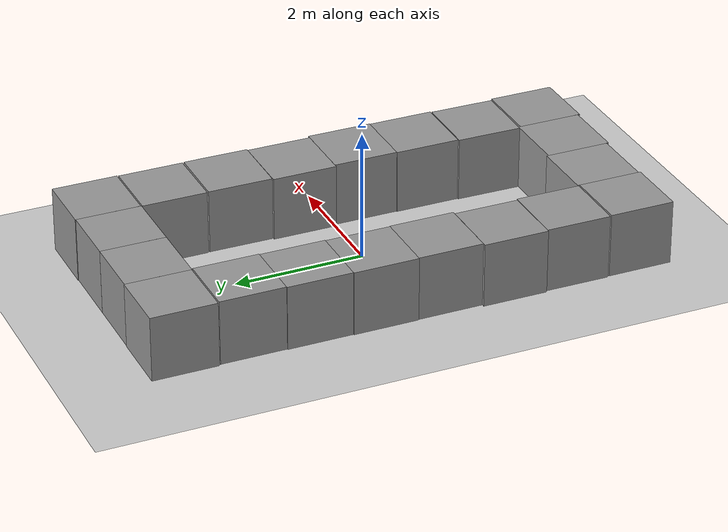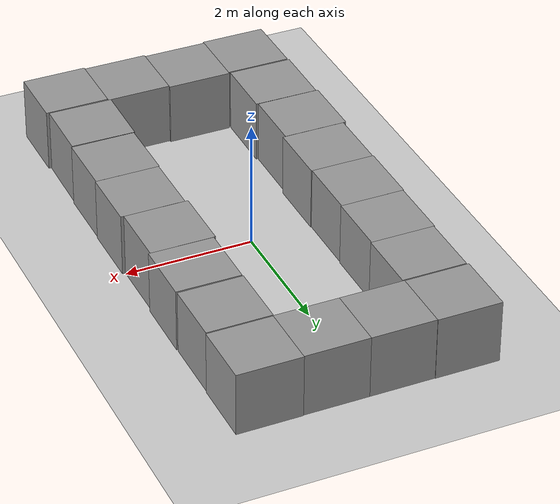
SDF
<sdf version="1.4">
 <world name="default">
  <light name="sun" type="directional">
   <pose>0 0 10 0 -0 0</pose>
   <diffuse>0.8 0.8 0.8 1</diffuse>
   <specular>0.2 0.2 0.2 1</specular>
   <attenuation>
    <range>1000</range>
    <constant>0.9</constant>
    <linear>0.01</linear>
    <quadratic>0.001</quadratic>
   </attenuation>
   <direction>-0.5 0.1 -0.9</direction>
  </light>
  <model name="ground_plane">
   <static>1</static>
   <link name="link">
    <collision name="collision">
     <geometry><plane><normal>0 0 1</normal><size>100 100</size></plane></geometry>
     <surface><friction><ode><mu>100</mu><mu2>50</mu2></ode></friction></surface>
    </collision>
    <visual name="visual">
     <cast_shadows>0</cast_shadows>
     <geometry><plane><normal>0 0 1</normal><size>100 100</size></plane></geometry>
     <material>
      <script><uri>file://media/materials/scripts/gazebo.material</uri><name>Gazebo/Grey</name></script>
     </material>
    </visual>
    <velocity_decay><linear>0</linear><angular>0</angular></velocity_decay>
   </link>
  </model>
  <physics type="ode">
   <max_step_size>0.001</max_step_size>
   <real_time_factor>1</real_time_factor>
   <real_time_update_rate>1000</real_time_update_rate>
   <gravity>0 0 -9.8</gravity>
  </physics>
  <scene><ambient>0.4 0.4 0.4 1</ambient><background>0.7 0.7 0.7 1</background><shadows>1</shadows></scene>
  <spherical_coordinates>
   <surface_model>EARTH_WGS84</surface_model>
   <latitude_deg>0</latitude_deg>
   <longitude_deg>0</longitude_deg>
   <elevation>0</elevation>
   <heading_deg>0</heading_deg>
  </spherical_coordinates>
  <model name="unit_box_1">
   <pose>-1.45911 -0.497832 0.5 0 -0 -0.000684</pose>
   <link name="link">
    <inertial>
     <mass>1</mass>
     <inertia><ixx>1</ixx><ixy>0</ixy><ixz>0</ixz><iyy>1</iyy><iyz>0</iyz><izz>1</izz></inertia>
    </inertial>
    <collision name="collision"><geometry><box><size>1 1 1</size></box></geometry></collision>
    <visual name="visual">
     <geometry><box><size>1 1 1</size></box></geometry>
     <material>
      <script><uri>file://media/materials/scripts/gazebo.material</uri><name>Gazebo/Grey</name></script>
     </material>
    </visual>
    <velocity_decay><linear>0</linear><angular>0</angular></velocity_decay>
   </link>
   <static>0</static>
  </model>
  <model name="unit_box_2">
   <pose>-1.47029 0.502232 0.5 -0 -0 -0.000612</pose>
   <link name="link">
    <inertial>
     <mass>1</mass>
     <inertia><ixx>1</ixx><ixy>0</ixy><ixz>0</ixz><iyy>1</iyy><iyz>0</iyz><izz>1</izz></inertia>
    </inertial>
    <collision name="collision"><geometry><box><size>1 1 1</size></box></geometry></collision>
    <visual name="visual">
     <geometry><box><size>1 1 1</size></box></geometry>
     <material>
      <script><uri>file://media/materials/scripts/gazebo.material</uri><name>Gazebo/Grey</name></script>
     </material>
    </visual>
    <velocity_decay><linear>0</linear><angular>0</angular></velocity_decay>
   </link>
   <static>0</static>
  </model>
  <model name="unit_box_3">
   <pose>-1.45782 1.50225 0.5 0 0 -0.000623</pose>
   <link name="link">
    <inertial>
     <mass>1</mass>
     <inertia><ixx>1</ixx><ixy>0</ixy><ixz>0</ixz><iyy>1</iyy><iyz>0</iyz><izz>1</izz></inertia>
    </inertial>
    <collision name="collision"><geometry><box><size>1 1 1</size></box></geometry></collision>
    <visual name="visual">
     <geometry><box><size>1 1 1</size></box></geometry>
     <material>
      <script><uri>file://media/materials/scripts/gazebo.material</uri><name>Gazebo/Grey</name></script>
     </material>
    </visual>
    <velocity_decay><linear>0</linear><angular>0</angular></velocity_decay>
   </link>
   <static>0</static>
  </model>
  <model name="unit_box_4">
   <pose>-1.44308 2.50225 0.5 0 -0 -0.000612</pose>
   <link name="link">
    <inertial>
     <mass>1</mass>
     <inertia><ixx>1</ixx><ixy>0</ixy><ixz>0</ixz><iyy>1</iyy><iyz>0</iyz><izz>1</izz></inertia>
    </inertial>
    <collision name="collision"><geometry><box><size>1 1 1</size></box></geometry></collision>
    <visual name="visual">
     <geometry><box><size>1 1 1</size></box></geometry>
     <material>
      <script><uri>file://media/materials/scripts/gazebo.material</uri><name>Gazebo/Grey</name></script>
     </material>
    </visual>
    <velocity_decay><linear>0</linear><angular>0</angular></velocity_decay>
   </link>
   <static>0</static>
  </model>
  <model name="unit_box_7">
   <pose>1.5402 -0.524001 0.5 0 -0 -0.000858</pose>
   <link name="link">
    <inertial>
     <mass>1</mass>
     <inertia><ixx>1</ixx><ixy>0</ixy><ixz>0</ixz><iyy>1</iyy><iyz>0</iyz><izz>1</izz></inertia>
    </inertial>
    <collision name="collision"><geometry><box><size>1 1 1</size></box></geometry></collision>
    <visual name="visual">
     <geometry><box><size>1 1 1</size></box></geometry>
     <material>
      <script><uri>file://media/materials/scripts/gazebo.material</uri><name>Gazebo/Grey</name></script>
     </material>
    </visual>
    <velocity_decay><linear>0</linear><angular>0</angular></velocity_decay>
   </link>
   <static>0</static>
  </model>
  <model name="unit_box_8">
   <pose>1.49506 0.476822 0.5 0 0 -0.000869</pose>
   <link name="link">
    <inertial>
     <mass>1</mass>
     <inertia><ixx>1</ixx><ixy>0</ixy><ixz>0</ixz><iyy>1</iyy><iyz>0</iyz><izz>1</izz></inertia>
    </inertial>
    <collision name="collision"><geometry><box><size>1 1 1</size></box></geometry></collision>
    <visual name="visual">
     <geometry><box><size>1 1 1</size></box></geometry>
     <material>
      <script><uri>file://media/materials/scripts/gazebo.material</uri><name>Gazebo/Grey</name></script>
     </material>
    </visual>
    <velocity_decay><linear>0</linear><angular>0</angular></velocity_decay>
   </link>
   <static>0</static>
  </model>
  <model name="unit_box_9">
   <pose>-1.48056 -2.50381 0.5 -0 -0 -0.007354</pose>
   <link name="link">
    <inertial>
     <mass>1</mass>
     <inertia><ixx>1</ixx><ixy>0</ixy><ixz>0</ixz><iyy>1</iyy><iyz>0</iyz><izz>1</izz></inertia>
    </inertial>
    <collision name="collision"><geometry><box><size>1 1 1</size></box></geometry></collision>
    <visual name="visual">
     <geometry><box><size>1 1 1</size></box></geometry>
     <material>
      <script><uri>file://media/materials/scripts/gazebo.material</uri><name>Gazebo/Grey</name></script>
     </material>
    </visual>
    <velocity_decay><linear>0</linear><angular>0</angular></velocity_decay>
   </link>
   <static>0</static>
  </model>
  <model name="unit_box_10">
   <pose>1.52665 -1.5242 0.5 -0 -0 -0.00124</pose>
   <link name="link">
    <inertial>
     <mass>1</mass>
     <inertia><ixx>1</ixx><ixy>0</ixy><ixz>0</ixz><iyy>1</iyy><iyz>0</iyz><izz>1</izz></inertia>
    </inertial>
    <collision name="collision"><geometry><box><size>1 1 1</size></box></geometry></collision>
    <visual name="visual">
     <geometry><box><size>1 1 1</size></box></geometry>
     <material>
      <script><uri>file://media/materials/scripts/gazebo.material</uri><name>Gazebo/Grey</name></script>
     </material>
    </visual>
    <velocity_decay><linear>0</linear><angular>0</angular></velocity_decay>
   </link>
   <static>0</static>
  </model>
  <model name="unit_box_11">
   <pose>1.50079 -2.53931 0.5 0 0 -0.013563</pose>
   <link name="link">
    <inertial>
     <mass>1</mass>
     <inertia><ixx>1</ixx><ixy>0</ixy><ixz>0</ixz><iyy>1</iyy><iyz>0</iyz><izz>1</izz></inertia>
    </inertial>
    <collision name="collision"><geometry><box><size>1 1 1</size></box></geometry></collision>
    <visual name="visual">
     <geometry><box><size>1 1 1</size></box></geometry>
     <material>
      <script><uri>file://media/materials/scripts/gazebo.material</uri><name>Gazebo/Grey</name></script>
     </material>
    </visual>
    <velocity_decay><linear>0</linear><angular>0</angular></velocity_decay>
   </link>
   <static>0</static>
  </model>
  <model name="unit_box_13">
   <pose>1.53251 -3.56532 0.5 0 -0 -0.001281</pose>
   <link name="link">
    <inertial>
     <mass>1</mass>
     <inertia><ixx>1</ixx><ixy>0</ixy><ixz>0</ixz><iyy>1</iyy><iyz>0</iyz><izz>1</izz></inertia>
    </inertial>
    <collision name="collision"><geometry><box><size>1 1 1</size></box></geometry></collision>
    <visual name="visual">
     <geometry><box><size>1 1 1</size></box></geometry>
     <material>
      <script><uri>file://media/materials/scripts/gazebo.material</uri><name>Gazebo/Grey</name></script>
     </material>
    </visual>
    <velocity_decay><linear>0</linear><angular>0</angular></velocity_decay>
   </link>
   <static>0</static>
  </model>
  <model name="unit_box_14">
   <pose>0.532552 -3.53237 0.5 0 -0 -0.001288</pose>
   <link name="link">
    <inertial>
     <mass>1</mass>
     <inertia><ixx>1</ixx><ixy>0</ixy><ixz>0</ixz><iyy>1</iyy><iyz>0</iyz><izz>1</izz></inertia>
    </inertial>
    <collision name="collision"><geometry><box><size>1 1 1</size></box></geometry></collision>
    <visual name="visual">
     <geometry><box><size>1 1 1</size></box></geometry>
     <material>
      <script><uri>file://media/materials/scripts/gazebo.material</uri><name>Gazebo/Grey</name></script>
     </material>
    </visual>
    <velocity_decay><linear>0</linear><angular>0</angular></velocity_decay>
   </link>
   <static>0</static>
  </model>
  <model name="unit_box_15">
   <pose>-0.46743 -3.49946 0.5 0 0 -0.001279</pose>
   <link name="link">
    <inertial>
     <mass>1</mass>
     <inertia><ixx>1</ixx><ixy>0</ixy><ixz>0</ixz><iyy>1</iyy><iyz>0</iyz><izz>1</izz></inertia>
    </inertial>
    <collision name="collision"><geometry><box><size>1 1 1</size></box></geometry></collision>
    <visual name="visual">
     <geometry><box><size>1 1 1</size></box></geometry>
     <material>
      <script><uri>file://media/materials/scripts/gazebo.material</uri><name>Gazebo/Grey</name></script>
     </material>
    </visual>
    <velocity_decay><linear>0</linear><angular>0</angular></velocity_decay>
   </link>
   <static>0</static>
  </model>
  <model name="unit_box_16">
   <pose>-1.46748 -3.5281 0.5 0 0 -0.001277</pose>
   <link name="link">
    <inertial>
     <mass>1</mass>
     <inertia><ixx>1</ixx><ixy>0</ixy><ixz>0</ixz><iyy>1</iyy><iyz>0</iyz><izz>1</izz></inertia>
    </inertial>
    <collision name="collision"><geometry><box><size>1 1 1</size></box></geometry></collision>
    <visual name="visual">
     <geometry><box><size>1 1 1</size></box></geometry>
     <material>
      <script><uri>file://media/materials/scripts/gazebo.material</uri><name>Gazebo/Grey</name></script>
     </material>
    </visual>
    <velocity_decay><linear>0</linear><angular>0</angular></velocity_decay>
   </link>
   <static>0</static>
  </model>
  <model name="unit_box_19">
   <pose>-1.4681 3.52257 0.5 0 -0 1.1e-05</pose>
   <link name="link">
    <inertial>
     <mass>1</mass>
     <inertia><ixx>1</ixx><ixy>0</ixy><ixz>0</ixz><iyy>1</iyy><iyz>0</iyz><izz>1</izz></inertia>
    </inertial>
    <collision name="collision"><geometry><box><size>1 1 1</size></box></geometry></collision>
    <visual name="visual">
     <geometry><box><size>1 1 1</size></box></geometry>
     <material>
      <script><uri>file://media/materials/scripts/gazebo.material</uri><name>Gazebo/Grey</name></script>
     </material>
    </visual>
    <velocity_decay><linear>0</linear><angular>0</angular></velocity_decay>
   </link>
   <static>0</static>
  </model>
  <model name="unit_box_20">
   <pose>-0.468078 3.51571 0.5 0 -0 4.4e-05</pose>
   <link name="link">
    <inertial>
     <mass>1</mass>
     <inertia><ixx>1</ixx><ixy>0</ixy><ixz>0</ixz><iyy>1</iyy><iyz>0</iyz><izz>1</izz></inertia>
    </inertial>
    <collision name="collision"><geometry><box><size>1 1 1</size></box></geometry></collision>
    <visual name="visual">
     <geometry><box><size>1 1 1</size></box></geometry>
     <material>
      <script><uri>file://media/materials/scripts/gazebo.material</uri><name>Gazebo/Grey</name></script>
     </material>
    </visual>
    <velocity_decay><linear>0</linear><angular>0</angular></velocity_decay>
   </link>
   <static>0</static>
  </model>
  <model name="unit_box_21">
   <pose>0.532049 3.51619 0.5 0 -0 0.000272</pose>
   <link name="link">
    <inertial>
     <mass>1</mass>
     <inertia><ixx>1</ixx><ixy>0</ixy><ixz>0</ixz><iyy>1</iyy><iyz>0</iyz><izz>1</izz></inertia>
    </inertial>
    <collision name="collision"><geometry><box><size>1 1 1</size></box></geometry></collision>
    <visual name="visual">
     <geometry><box><size>1 1 1</size></box></geometry>
     <material>
      <script><uri>file://media/materials/scripts/gazebo.material</uri><name>Gazebo/Grey</name></script>
     </material>
    </visual>
    <velocity_decay><linear>0</linear><angular>0</angular></velocity_decay>
   </link>
   <static>0</static>
  </model>
  <model name="unit_box_22">
   <pose>1.53211 3.52553 0.5 0 -0 0.000348</pose>
   <link name="link">
    <inertial>
     <mass>1</mass>
     <inertia><ixx>1</ixx><ixy>0</ixy><ixz>0</ixz><iyy>1</iyy><iyz>0</iyz><izz>1</izz></inertia>
    </inertial>
    <collision name="collision"><geometry><box><size>1 1 1</size></box></geometry></collision>
    <visual name="visual">
     <geometry><box><size>1 1 1</size></box></geometry>
     <material>
      <script><uri>file://media/materials/scripts/gazebo.material</uri><name>Gazebo/Grey</name></script>
     </material>
    </visual>
    <velocity_decay><linear>0</linear><angular>0</angular></velocity_decay>
   </link>
   <static>0</static>
  </model>
  <model name="unit_box_26">
   <pose>1.52093 2.50489 0.5 0 -0 0.000534</pose>
   <link name="link">
    <inertial>
     <mass>1</mass>
     <inertia><ixx>1</ixx><ixy>0</ixy><ixz>0</ixz><iyy>1</iyy><iyz>0</iyz><izz>1</izz></inertia>
    </inertial>
    <collision name="collision"><geometry><box><size>1 1 1</size></box></geometry></collision>
    <visual name="visual">
     <geometry><box><size>1 1 1</size></box></geometry>
     <material>
      <script><uri>file://media/materials/scripts/gazebo.material</uri><name>Gazebo/Grey</name></script>
     </material>
    </visual>
    <velocity_decay><linear>0</linear><angular>0</angular></velocity_decay>
   </link>
   <static>0</static>
  </model>
  <model name="unit_box_27">
   <pose>1.52758 1.47954 0.5 -0 -0 -0.00592</pose>
   <link name="link">
    <inertial>
     <mass>1</mass>
     <inertia><ixx>1</ixx><ixy>0</ixy><ixz>0</ixz><iyy>1</iyy><iyz>0</iyz><izz>1</izz></inertia>
    </inertial>
    <collision name="collision"><geometry><box><size>1 1 1</size></box></geometry></collision>
    <visual name="visual">
     <geometry><box><size>1 1 1</size></box></geometry>
     <material>
      <script><uri>file://media/materials/scripts/gazebo.material</uri><name>Gazebo/Grey</name></script>
     </material>
    </visual>
    <velocity_decay><linear>0</linear><angular>0</angular></velocity_decay>
   </link>
   <static>0</static>
  </model>
  <model name="unit_box_28">
   <pose>-1.50489 -1.49916 0.5 -0 -0 -0.00328</pose>
   <link name="link">
    <inertial>
     <mass>1</mass>
     <inertia><ixx>1</ixx><ixy>0</ixy><ixz>0</ixz><iyy>1</iyy><iyz>0</iyz><izz>1</izz></inertia>
    </inertial>
    <collision name="collision"><geometry><box><size>1 1 1</size></box></geometry></collision>
    <visual name="visual">
     <geometry><box><size>1 1 1</size></box></geometry>
     <material>
      <script><uri>file://media/materials/scripts/gazebo.material</uri><name>Gazebo/Grey</name></script>
     </material>
    </visual>
    <velocity_decay><linear>0</linear><angular>0</angular></velocity_decay>
   </link>
   <static>0</static>
  </model>
 </world>
</sdf>
